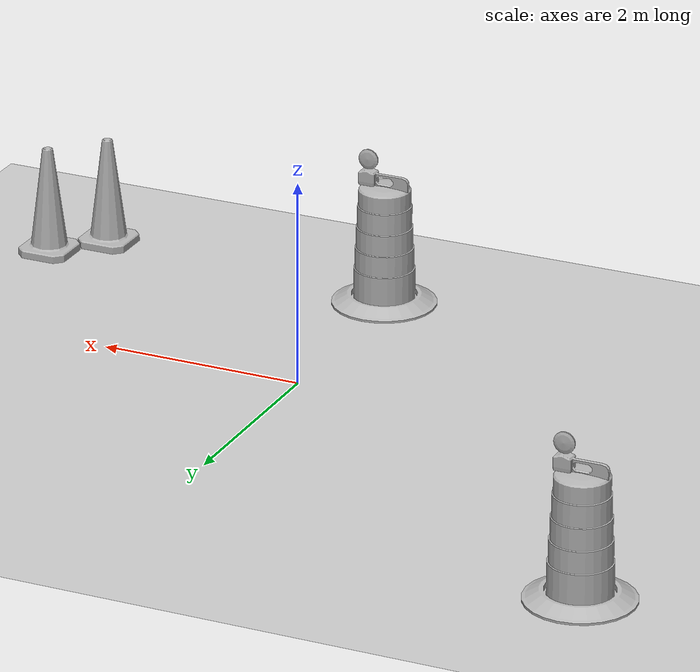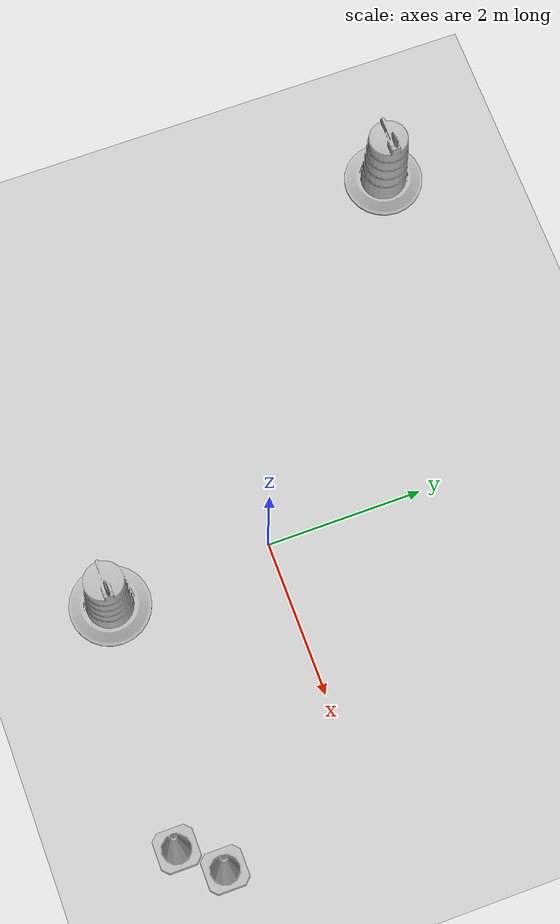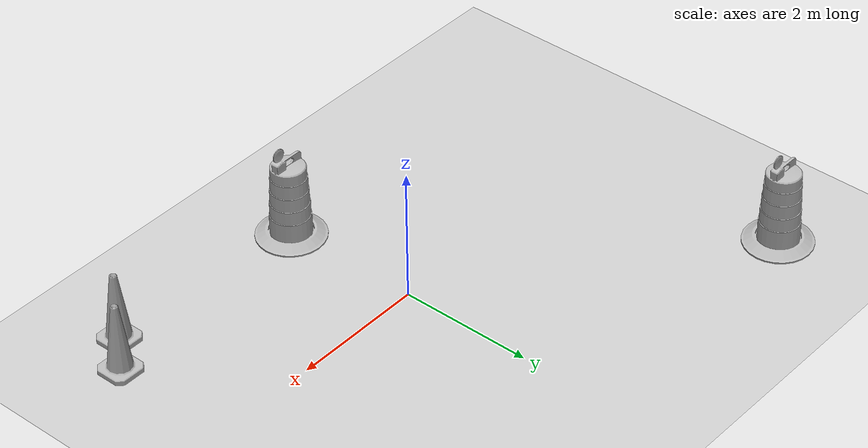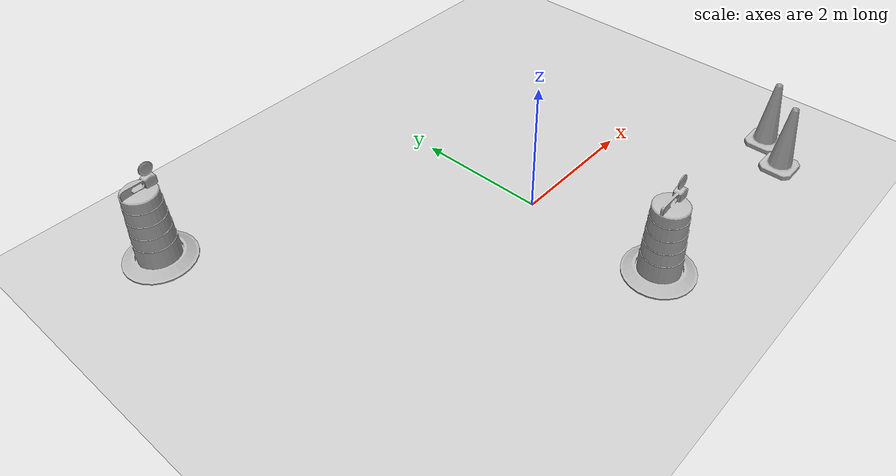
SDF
<sdf version="1.7">
 <world name="default">
  <light name="sun" type="directional">
   <pose>0 0 10 0 -0 0</pose>
   <diffuse>0.8 0.8 0.8 1</diffuse>
   <specular>0.2 0.2 0.2 1</specular>
   <attenuation>
    <range>1000</range>
    <constant>0.9</constant>
    <linear>0.01</linear>
    <quadratic>0.001</quadratic>
   </attenuation>
   <direction>-0.5 0.1 -0.9</direction>
   <spot><inner_angle>0</inner_angle><outer_angle>0</outer_angle><falloff>0</falloff></spot>
  </light>
  <gravity>0 0 -9.8</gravity>
  <magnetic_field>6e-06 2.3e-05 -4.2e-05</magnetic_field>
  <atmosphere type="adiabatic"/>
  <physics type="ode">
   <max_step_size>0.001</max_step_size>
   <real_time_factor>1</real_time_factor>
   <real_time_update_rate>1000</real_time_update_rate>
  </physics>
  <scene>
   <ambient>0.4 0.4 0.4 1</ambient>
   <background>0.7 0.7 0.7 1</background>
   <shadows>1</shadows>
   <sky><clouds><speed>12</speed></clouds></sky>
  </scene>
  <spherical_coordinates>
   <surface_model>EARTH_WGS84</surface_model>
   <latitude_deg>0</latitude_deg>
   <longitude_deg>0</longitude_deg>
   <elevation>0</elevation>
   <heading_deg>0</heading_deg>
  </spherical_coordinates>
  <model name="Qualifying Course">
   <static>1</static>
   <link name="link">
    <collision name="collision">
     <geometry><plane><normal>0 0 1</normal><size>25 25</size></plane></geometry>
     <surface><friction><ode><mu>100</mu><mu2>50</mu2></ode></friction></surface>
    </collision>
    <visual name="visual">
     <cast_shadows>0</cast_shadows>
     <geometry><plane><normal>0 0 1</normal><size>25 25</size></plane></geometry>
     <material>
      <script>
       <uri>model://qualifying_course/materials/scripts</uri>
       <uri>model://qualifying_course/materials/textures</uri>
       <name>vrc/Image</name>
      </script>
     </material>
    </visual>
   </link>
   <pose>0.49694 0.2197 0 0 -0 0</pose>
  </model>
  <model name="Construction Barrel">
   <link name="link">
    <inertial>
     <pose>0 0 0.4 0 -0 0</pose>
     <mass>500</mass>
     <inertia><ixx>51.2096</ixx><iyy>51.2096</iyy><izz>25</izz><ixy>0</ixy><ixz>0</ixz><iyz>0</iyz></inertia>
    </inertial>
    <collision name="collision">
     <geometry><mesh><uri>model://construction_barrel/meshes/construction_barrel.dae</uri></mesh></geometry>
    </collision>
    <visual name="visual">
     <geometry><mesh><uri>model://construction_barrel/meshes/construction_barrel.dae</uri></mesh></geometry>
    </visual>
   </link>
   <pose>-4.13802 3.11645 -1e-06 -8e-06 -2e-06 -8e-06</pose>
  </model>
  <model name="Construction Barrel_0">
   <link name="link">
    <inertial>
     <pose>0 0 0.4 0 -0 0</pose>
     <mass>500</mass>
     <inertia><ixx>51.2096</ixx><iyy>51.2096</iyy><izz>25</izz><ixy>0</ixy><ixz>0</ixz><iyz>0</iyz></inertia>
    </inertial>
    <collision name="collision">
     <geometry><mesh><uri>model://construction_barrel/meshes/construction_barrel.dae</uri></mesh></geometry>
    </collision>
    <visual name="visual">
     <geometry><mesh><uri>model://construction_barrel/meshes/construction_barrel.dae</uri></mesh></geometry>
    </visual>
   </link>
   <pose>0.063805 -2.08134 1e-06 2e-06 3e-06 -6e-06</pose>
  </model>
  <model name="Construction Cone">
   <link name="link">
    <collision name="collision">
     <geometry>
      <mesh><scale>10 10 10</scale><uri>model://construction_cone/meshes/construction_cone.dae</uri></mesh>
     </geometry>
    </collision>
    <visual name="visual">
     <geometry>
      <mesh><scale>10 10 10</scale><uri>model://construction_cone/meshes/construction_cone.dae</uri></mesh>
     </geometry>
    </visual>
    <inertial>
     <inertia><ixx>1</ixx><ixy>0</ixy><ixz>0</ixz><iyy>1</iyy><iyz>0</iyz><izz>1</izz></inertia>
     <mass>1</mass>
    </inertial>
   </link>
   <pose>3.55017 -1.84393 -0 0 -0 0</pose>
  </model>
  <model name="Construction Cone_0">
   <link name="link">
    <collision name="collision">
     <geometry>
      <mesh><scale>10 10 10</scale><uri>model://construction_cone/meshes/construction_cone.dae</uri></mesh>
     </geometry>
    </collision>
    <visual name="visual">
     <geometry>
      <mesh><scale>10 10 10</scale><uri>model://construction_cone/meshes/construction_cone.dae</uri></mesh>
     </geometry>
    </visual>
    <inertial>
     <inertia><ixx>1</ixx><ixy>0</ixy><ixz>0</ixz><iyy>1</iyy><iyz>0</iyz><izz>1</izz></inertia>
     <mass>1</mass>
    </inertial>
   </link>
   <pose>3.13035 -2.29854 -0 0 -1e-06 0</pose>
  </model>
 </world>
</sdf>
